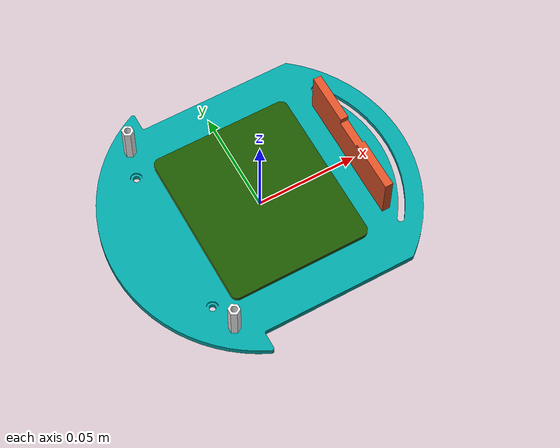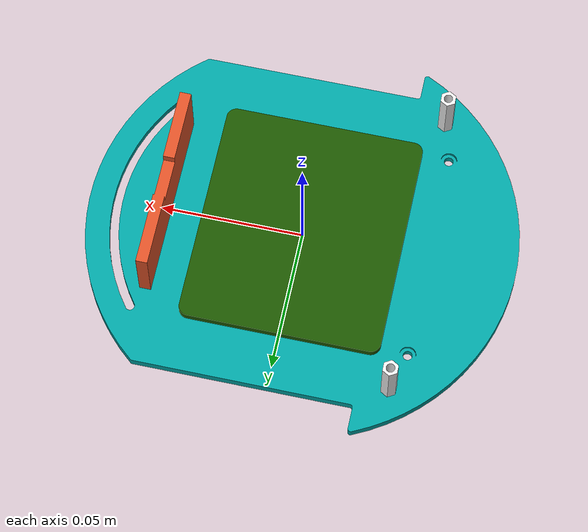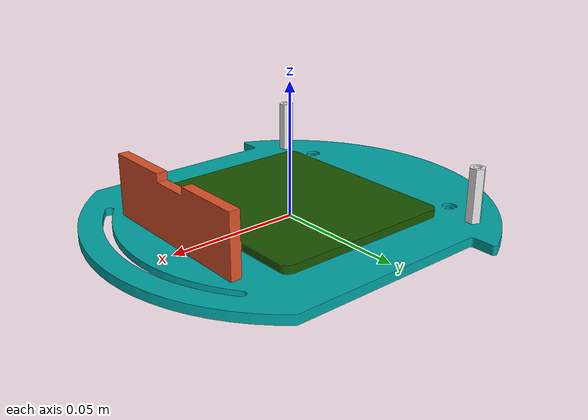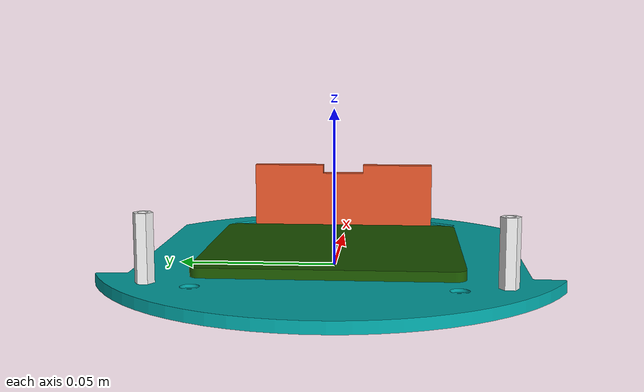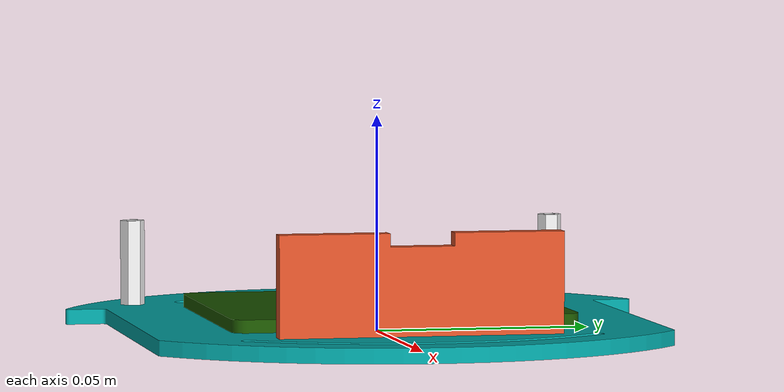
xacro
<?xml version="1.0" ?>
<robot xmlns:xacro="http://www.ros.org/wiki/xacro">

    <xacro:property name="base_floor2_m" value="0.0997662" />
    <xacro:property name="base_floor2_r" value="0.07500000" />
    <xacro:property name="base_floor2_h" value="0.02350000" />
    <xacro:property name="base_floor2_o_xyz" value="0 0 ${base_floor2_h / 2}" />
    <xacro:property name="base_floor2_o_rpy" value="0 0 0" />

    <!-- Link base_floor2 -->
    <link name="base_floor2">

        <xacro:cylinder_inertia m="${base_floor2_m}" r="${base_floor2_r}" h="${base_floor2_h}" o_xyz="${base_floor2_o_xyz}" o_rpy="${base_floor2_o_rpy}"/>

        <collision>
        <origin xyz="${base_floor2_o_xyz}" rpy="${base_floor2_o_rpy}"/>
        <geometry>
            <cylinder radius="${base_floor2_r}" length="${base_floor2_h}" />
        </geometry>
        </collision>

        <!-- Part base_floor_2 -->
        <visual>
        <origin xyz="0 0 0" rpy="0 -0 0"/>
        <geometry>
            <mesh filename="package://gizmo_description/meshes/base_floor_2.stl"/>
        </geometry>
        <material name="base_floor_2_material">
            <color rgba="0 0.639216 0.639216 1"/>
        </material>
        </visual>

        <!-- Part bn_1593_1348663_hexagon_socket_button_head_screw_m3x6_11 -->
        <visual>
        <origin xyz="-0.0406106 -0.0507522 0.001" rpy="-0 -1.5708 0"/>
        <geometry>
            <mesh filename="package://gizmo_description/meshes/bn_1593_1348663_hexagon_socket_button_head_screw_m3x6.stl"/>
        </geometry>
        <material name="bn_1593_1348663_hexagon_socket_button_head_screw_m3x6_11_material">
            <color rgba="0.941176 0.941176 0.941176 1"/>
        </material>
        </visual>

        <!-- Part face_plate_top -->
        <visual>
        <origin xyz="0.048 0 0.0035" rpy="0 -0 0"/>
        <geometry>
            <mesh filename="package://gizmo_description/meshes/face_plate_top.stl"/>
        </geometry>
        <material name="face_plate_top_material">
            <color rgba="0.866667 0.321569 0.156863 1"/>
        </material>
        </visual>

        <!-- Part bn_1593_1348663_hexagon_socket_button_head_screw_m3x6_12 -->
        <visual>
        <origin xyz="-0.0406106 0.0507522 0.001" rpy="-0 -1.5708 0"/>
        <geometry>
            <mesh filename="package://gizmo_description/meshes/bn_1593_1348663_hexagon_socket_button_head_screw_m3x6.stl"/>
        </geometry>
        <material name="bn_1593_1348663_hexagon_socket_button_head_screw_m3x6_12_material">
            <color rgba="0.941176 0.941176 0.941176 1"/>
        </material>
        </visual>

        <!-- Part standoff_spacer_m3_20mm -->
        <visual>
        <origin xyz="-0.0406106 0.0507522 0.0035" rpy="0 -0 0"/>
        <geometry>
            <mesh filename="package://gizmo_description/meshes/standoff_spacer_m3_20mm.stl"/>
        </geometry>
        <material name="standoff_spacer_m3_20mm_material">
            <color rgba="0.917647 0.917647 0.917647 1"/>
        </material>
        </visual>

        <!-- Part standoff_spacer_m3_20mm_2 -->
        <visual>
        <origin xyz="-0.0406106 -0.0507522 0.0035" rpy="0 -0 0"/>
        <geometry>
            <mesh filename="package://gizmo_description/meshes/standoff_spacer_m3_20mm.stl"/>
        </geometry>
        <material name="standoff_spacer_m3_20mm_2_material">
            <color rgba="0.917647 0.917647 0.917647 1"/>
        </material>
        </visual>

        <!-- Part mcu_controller -->
        <visual>
        <origin xyz="0 0 0.0035" rpy="0 -0 0"/>
        <geometry>
            <mesh filename="package://gizmo_description/meshes/mcu_controller.stl"/>
        </geometry>
        <material name="mcu_controller_material">
            <color rgba="0.105882 0.333333 0 1"/>
        </material>
        </visual>

    </link>

</robot>
